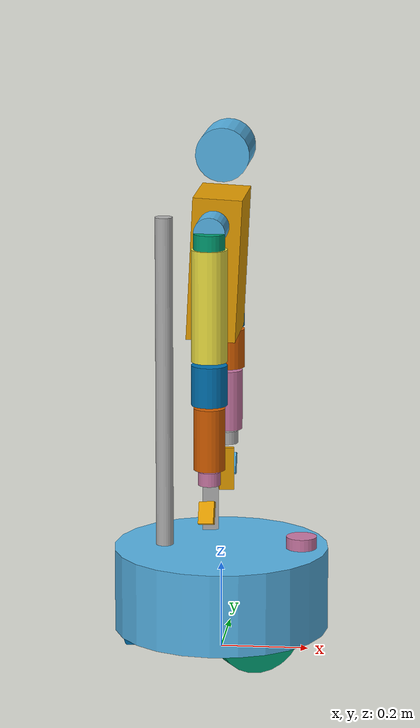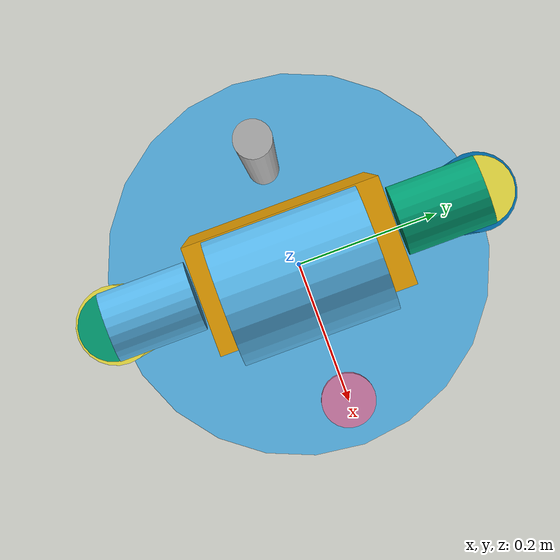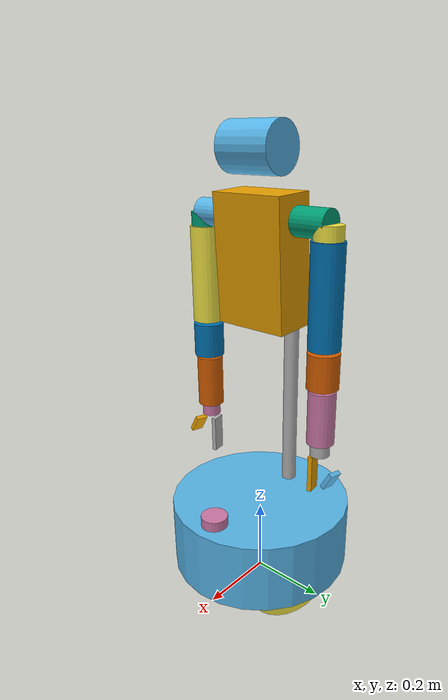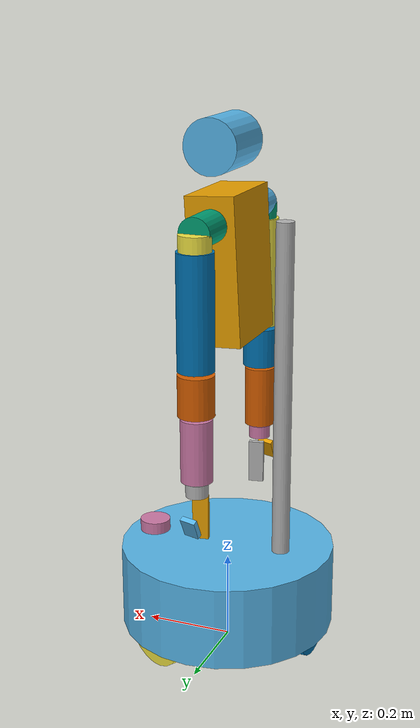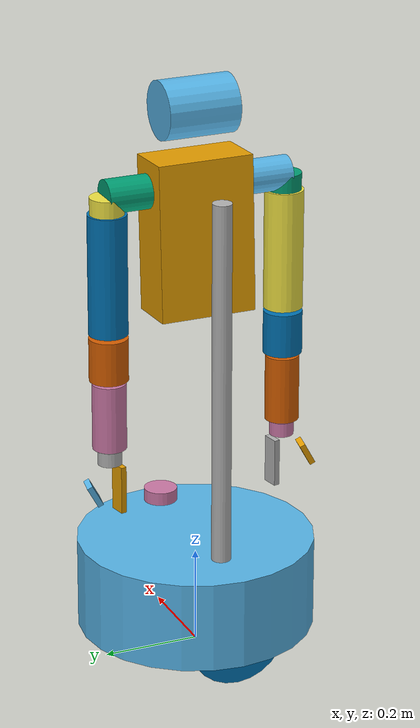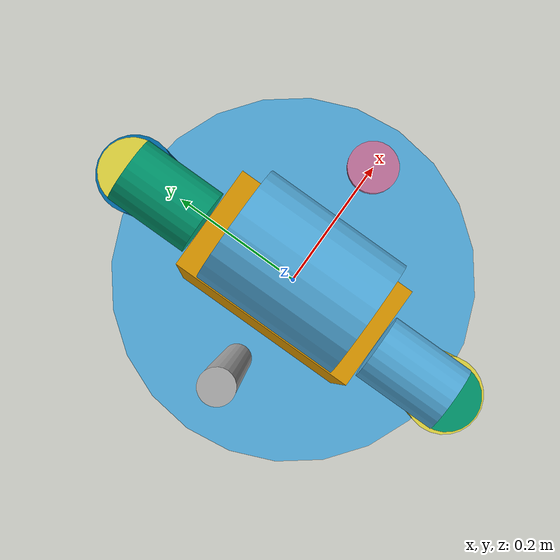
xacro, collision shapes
<?xml version="1.0"?>
<robot xmlns:xacro="http://www.ros.org/wiki/xacro" name="reachy_2023">
  <xacro:arg name="use_fake_hardware" default="true"/>
  <xacro:arg name="use_gazebo" default="false"/>
  <xacro:arg name="robot_config" default="full_kit"/>
  <xacro:arg name="orbita_hardware_zero" default="0.0, 0.0, 0.0"/>

  <xacro:include filename="/home/osamuzahid/Projects/isaac-social-nav/ros2_ws/src/Hunav_isaac_wrapper/src/config/robots/reachy/urdf/arm.urdf.xacro"/>
  <xacro:include filename="/home/osamuzahid/Projects/isaac-social-nav/ros2_ws/src/Hunav_isaac_wrapper/src/config/robots/reachy/urdf/head.urdf.xacro"/>
  <xacro:include filename="/home/osamuzahid/Projects/isaac-social-nav/ros2_ws/src/Hunav_isaac_wrapper/src/config/robots/reachy/urdf/orbita.urdf.xacro"/>
  <xacro:include filename="/home/osamuzahid/Projects/isaac-social-nav/ros2_ws/src/Hunav_isaac_wrapper/src/config/robots/reachy/urdf/zuuu.urdf.xacro"/>

  <!-- PATCH (isaac-social-nav): Zuuu mobile base (lab Reachy). Torso sits on
       the pole — not world→torso at z=1.0 (Phase 0 table-top). -->
  <xacro:zuuu/>

  <joint name="base_joint" type="fixed">
    <origin xyz="-0.006 0 1.0" rpy="0 0 0"/>
    <parent link="base_link"/>
    <child link="torso"/>
  </joint>

  <link name="bar_link">
    <visual>
      <origin xyz="0.0 0.0 0.6125" rpy="0.0 0.0 0.0"/>
      <geometry>
        <cylinder radius="0.02" length="0.775"/>
      </geometry>
    </visual>
    <collision>
      <origin xyz="0.0 0.0 0.6125" rpy="0.0 0.0 0.0"/>
      <geometry>
        <cylinder radius="0.02" length="0.775"/>
      </geometry>
    </collision>
  </link>
  <joint name="bar_joint" type="fixed">
    <origin xyz="-0.130 0 0.0" rpy="0 0 0"/>
    <parent link="base_link"/>
    <child link="bar_link"/>
  </joint>

  <link name="torso">
    <inertial>
      <origin xyz="0.0 0.019 -0.009" rpy="0.0 0.0 0.0"/>
      <mass value="0.527"/>
      <inertia ixx="2.89598e-3" ixy="-1.16791e-6" ixz="-8.28749e-6" iyy="4.491e-3" iyz="2.343e-4" izz="3.995e-3"/>
    </inertial>
    <visual name="">
      <origin xyz="0.0 0.0 0.0" rpy="0.0 0.0 0.0"/>
      <geometry>
        <mesh filename="file:///home/osamuzahid/Projects/isaac-social-nav/ros2_ws/src/Hunav_isaac_wrapper/src/config/robots/reachy/meshes/torso.obj"/>
      </geometry>
    </visual>
    <collision>
      <origin xyz="0 0 -0.1" rpy="0 0.05 0"/>
      <geometry>
        <box size="0.11 0.2 0.32"/>
      </geometry>
    </collision>
  </link>

  <xacro:property name="damping" value="0.1"/>
  <xacro:property name="friction" value="0.1"/>
  <xacro:property name="robot_config" value="$(arg robot_config)"/>

  <xacro:if value="${robot_config == 'full_kit'}">
    <xacro:property name="use_right_arm" value="true"/>
    <xacro:property name="use_left_arm" value="true"/>
    <xacro:property name="use_head" value="true"/>
    <xacro:property name="use_orbita" value="false"/>
  </xacro:if>

  <xacro:if value="${use_right_arm}">
    <xacro:arm
      prefix="r" parent="torso" side="right"
      damping="${damping}" friction="${friction}"
      serial_port="/dev/usb2ax_right_arm"
      mx_ids="10, 11, 12, 13, 14, 15, 16, 17"
      offsets="1.57, 1.57, 0.0, 0.0, 0.0, 0.0, 0.0, 0.0"
      is_direct="0.0, 0.0, 0.0, 0.0, 0.0, 0.0, 0.0, 1.0"
      reductions="1.0, 1.0, 1.0, 1.0, 1.0, 1.0, 1.0, -2.0"
      force_sensor_id="40"
      fan_id="41"
    />
  </xacro:if>

  <xacro:if value="${use_left_arm}">
    <xacro:arm
      prefix="l" parent="torso" side="left"
      damping="${damping}" friction="${friction}"
      serial_port="/dev/usb2ax_left_arm"
      mx_ids="20, 21, 22, 23, 24, 25, 26, 27"
      offsets="1.57, -1.57, 0.0, 0.0, 0.0, 0.0, 0.0, 0.0"
      is_direct="1.0, 0.0, 0.0, 0.0, 0.0, 0.0, 0.0, 1.0"
      reductions="1.0, 1.0, 1.0, 1.0, 1.0, 1.0, 1.0, -2.0"
      force_sensor_id="50"
      fan_id="51"
    />
  </xacro:if>

  <xacro:if value="${use_head}">
    <xacro:head
      parent="torso"
      damping="${damping}" friction="${friction}"
      neck_orbita_serial_port="/dev/orbita_neck"
      neck_orbita_id="70"
      neck_orbita_alpha="0.9424777960769379"
      neck_orbita_hardware_zero="$(arg orbita_hardware_zero)"
      neck_orbita_reduction="4.26666667"
      head_serial_port="/dev/usb2ax_head"
      head_xl320_ids="30, 31"
      head_xl320_offsets="0.0, 0.0"
      head_xl320_is_direct="1.0, 1.0"
      head_xl320_reductions="1.0, 1.0"
      head_fan_id="60"
    />
  </xacro:if>
</robot>

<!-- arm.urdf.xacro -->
<robot xmlns:xacro="http://www.ros.org/wiki/xacro">
    <xacro:macro name="arm"
                 params="prefix parent side damping friction serial_port mx_ids offsets is_direct reductions force_sensor_id fan_id">

        <xacro:include filename="/home/osamuzahid/Projects/isaac-social-nav/ros2_ws/src/Hunav_isaac_wrapper/src/config/robots/reachy/ros2_control/arm.ros2_control.xacro"/>

        <xacro:if value="${side == 'left'}">
            <xacro:property name="reflect" value="-1"/>
            <xacro:property name="shoulder_y" value="0.044"/>
        </xacro:if>
        <xacro:if value="${side == 'right'}">
            <xacro:property name="reflect" value="1"/>
            <xacro:property name="shoulder_y" value="0.036"/>
        </xacro:if>

        <link name="${prefix}_shoulder">
            <inertial>
                <origin xyz="-0.016 ${shoulder_y} 0.0" rpy="${1.57*reflect} 1.57 0.0"/>
                <mass value="0.053"/>
                <inertia ixx="3.308e-4" ixy="9.972e-8" ixz="-2.037e-9" iyy="4.650e-5" iyz="2.113e-6" izz="3.545e-5"/>
            </inertial>
            <visual name="">
                <origin xyz="0.0 ${0.04*reflect} 0.0" rpy="${1.57*reflect} 1.57 0.0"/>
                <geometry>
                    <mesh filename="file:///home/osamuzahid/Projects/isaac-social-nav/ros2_ws/src/Hunav_isaac_wrapper/src/config/robots/reachy/meshes/shoulder.obj"/>
                </geometry>
            </visual>
            <collision>
                <origin xyz="0.0 ${0.04*reflect} 0.0" rpy="${1.57*reflect} 1.57 0.0"/>
                <geometry>
                    <cylinder length="0.09" radius="0.035"/>
                </geometry>
            </collision>
        </link>

        <joint name="${prefix}_shoulder_pitch" type="revolute">
            <origin xyz="0.0 ${-0.19*reflect} 0.0" rpy="0.0 0.0 0.0"/>
            <parent link="${parent}"/>
            <child link="${prefix}_shoulder"/>
            <axis xyz="0 1 0"/>
            <limit lower="-2.618" upper="1.57" effort="10." velocity="0.0"/>
            <dynamics damping="${damping}" friction="${friction}"/>
        </joint>

        <link name="${prefix}_shoulder_x">
            <inertial>
                <origin xyz="-0.0 0.0 -0.019" rpy="0.0 0.0 0.0"/>
                <mass value="0.158"/>
                <inertia ixx="6.95e-5" ixy="0.0" ixz="0.0" iyy="6.95e-5" iyz="0.0" izz="9.68e-5"/>
            </inertial>
            <visual name="">
                <origin xyz="0.0 0.0 0.0" rpy="0.0 0.0 0.0"/>
                <geometry>
                    <mesh filename="file:///home/osamuzahid/Projects/isaac-social-nav/ros2_ws/src/Hunav_isaac_wrapper/src/config/robots/reachy/meshes/shoulder_x.obj"/>
                </geometry>
            </visual>
            <collision>
                <origin xyz="0 0 -0.02" rpy="0.0 0.0 0.0"/>
                <geometry>
                    <cylinder length="0.04" radius="0.035"/>
                </geometry>
            </collision>
        </link>

        <joint name="${prefix}_shoulder_roll" type="revolute">
            <origin xyz="0 0 0" rpy="0.0 0.0 0.0"/>
            <parent link="${prefix}_shoulder"/>
            <child link="${prefix}_shoulder_x"/>
            <axis xyz="1 0 0"/>
            <xacro:if value="${side == 'right'}">
                <limit lower="-3.14" upper="0.174" effort="10." velocity="0.0"/>
            </xacro:if>
            <xacro:if value="${side == 'left'}">
                <limit lower="-0.174" upper="3.14" effort="10." velocity="0.0"/>
            </xacro:if>
            <dynamics damping="${damping}" friction="${friction}"/>
        </joint>

        <link name="${prefix}_upper_arm">
            <inertial>
                <origin xyz="-0.004 0.0 -0.1426" rpy="0.0 0.0 0.0"/>
                <mass value="0.430"/>
                <inertia ixx="3.264e-3" ixy="-4.027e-8" ixz="1.395e-4" iyy="3.345e-3" iyz="1.885e-6" izz="2.616e-4"/>
            </inertial>
            <visual name="">
                <origin xyz="0.0 0.0 -0.0526" rpy="0.0 0.0 0.0"/>
                <geometry>
                    <mesh filename="file:///home/osamuzahid/Projects/isaac-social-nav/ros2_ws/src/Hunav_isaac_wrapper/src/config/robots/reachy/meshes/upper_arm.obj"/>
                </geometry>
            </visual>
            <collision>
                <origin xyz="0.0 0.0 -0.16" rpy="0.0 0.0 0.0"/>
                <geometry>
                    <cylinder length="0.25" radius="0.04"/>
                </geometry>
            </collision>
        </link>

        <joint name="${prefix}_arm_yaw" type="revolute">
            <origin xyz="0 0 0" rpy="0.0 0.0 0.0"/>
            <parent link="${prefix}_shoulder_x"/>
            <child link="${prefix}_upper_arm"/>
            <axis xyz="0 0 1"/>
            <limit lower="-1.57" upper="1.57" effort="10." velocity="0.0"/>
            <dynamics damping="${damping}" friction="${friction}"/>
        </joint>

        <link name="${prefix}_forearm">
            <inertial>
                <origin xyz="-0.008 0.0 -0.058" rpy="0.0 0.0 0.0"/>
                <mass value="0.162"/>
                <inertia ixx="2.532e-4" ixy="-2.999e-8" ixz="1.448e-5" iyy="2.538e-4" iyz="-4.323e-8" izz="1.234e-4"/>
            </inertial>
            <visual name="">
                <origin xyz="0.0 0.0 0.0" rpy="0.0 0.0 0.0"/>
                <geometry>
                    <mesh filename="file:///home/osamuzahid/Projects/isaac-social-nav/ros2_ws/src/Hunav_isaac_wrapper/src/config/robots/reachy/meshes/forearm.obj"/>
                </geometry>
            </visual>
            <collision>
                <origin xyz="0.0 0.0 -0.058" rpy="0.0 0.0 0.0"/>
                <geometry>
                    <cylinder length="0.09" radius="0.04"/>
                </geometry>
            </collision>
        </link>

        <joint name="${prefix}_elbow_pitch" type="revolute">
            <origin xyz="0 0 -0.28" rpy="0.0 0.0 0.0"/>
            <parent link="${prefix}_upper_arm"/>
            <child link="${prefix}_forearm"/>
            <axis xyz="0 1 0"/>
            <limit lower="-2.182" upper="0" effort="10." velocity="0.0"/>
            <dynamics damping="${damping}" friction="${friction}"/>
        </joint>

        <link name="${prefix}_wrist">
            <inertial>
                <origin xyz="0.0 0.0 -0.193" rpy="0.0 0.0 0.0"/>
                <mass value="0.197"/>
                <inertia ixx="6.157e-4" ixy="5.706e-8" ixz="-1.045e-5" iyy="6.280e-4" iyz="4.862e-7" izz="1.050e-4"/>
            </inertial>
            <visual name="">
                <origin xyz="0.0 0.0 -0.100" rpy="0.0 0.0 0.0"/>
                <geometry>
                    <mesh filename="file:///home/osamuzahid/Projects/isaac-social-nav/ros2_ws/src/Hunav_isaac_wrapper/src/config/robots/reachy/meshes/wrist.obj"/>
                </geometry>
            </visual>
            <collision>
                <origin xyz="0.0 0.0 -0.18" rpy="0.0 0.0 0.0"/>
                <geometry>
                    <cylinder length="0.14" radius="0.035"/>
                </geometry>
            </collision>
        </link>
        <gazebo reference="{prefix}_wrist">
            <self_collide>1</self_collide>
            <gravity>0</gravity>
            <mu1>10.0</mu1>
            <mu2>0.1</mu2>
            <kp>2e+9</kp>
            <kd>1.0</kd>
            <fdir1 value="1 0 0"/>
        </gazebo>

        <joint name="${prefix}_forearm_yaw" type="revolute">
            <origin xyz="0 0 0" rpy="0.0 0.0 0.0"/>
            <parent link="${prefix}_forearm"/>
            <child link="${prefix}_wrist"/>
            <axis xyz="0 0 1"/>
            <limit lower="-1.745" upper="1.745" effort="10." velocity="0.0"/>
            <dynamics damping="${damping}" friction="${friction}"/>
        </joint>

        <link name="${prefix}_wrist2hand">
            <inertial>
                <origin xyz="0.0 0.0 0.014" rpy="0.0 0.0 0.0"/>
                <mass value="0.01"/>
                <inertia ixx="6.750e-6" ixy="3.732e-11" ixz="-1.581e-11" iyy="6.060e-6" iyz="-1.746e-12"
                         izz="5.774e-6"/>
            </inertial>
            <visual name="">
                <origin xyz="0.0 0.0 0.0" rpy="0.0 0.0 0.0"/>
                <geometry>
                    <mesh filename="file:///home/osamuzahid/Projects/isaac-social-nav/ros2_ws/src/Hunav_isaac_wrapper/src/config/robots/reachy/meshes/wrist2hand.obj"/>
                </geometry>
            </visual>
            <collision>
                <origin xyz="0.0 0.0 -0.02" rpy="0.0 0.0 0.0"/>
                <geometry>
                    <cylinder length="0.03" radius="0.025"/>
                </geometry>
            </collision>
        </link>
        <gazebo reference="${prefix}_wrist2hand">
            <self_collide>1</self_collide>
            <gravity>0</gravity>
            <mu1>10.0</mu1>
            <mu2>0.1</mu2>
            <kp>2e+9</kp>
            <kd>1.0</kd>
            <fdir1 value="1 0 0"/>
        </gazebo>

        <joint name="${prefix}_wrist_pitch" type="revolute">
            <origin xyz="0 0 -0.25" rpy="0.0 0.0 0.0"/>
            <parent link="${prefix}_wrist"/>
            <child link="${prefix}_wrist2hand"/>
            <axis xyz="0 1 0"/>
            <limit lower="-0.785" upper="0.785" effort="10." velocity="0.0"/>
            <dynamics damping="${damping}" friction="${friction}"/>
        </joint>
        <gazebo reference="{prefix}_wrist_pitch">
            <self_collide>1</self_collide>
            <gravity>0</gravity>
            <mu1>10.0</mu1>
            <mu2>0.1</mu2>
            <kp>2e+9</kp>
            <kd>1.0</kd>
            <fdir1 value="1 0 0"/>
        </gazebo>

        <link name="${prefix}_gripper_thumb">
            <inertial>
                <origin xyz="0.0 ${0.02 *reflect} -0.06" rpy="0.0 1.57 0.0"/>
                <mass value="0.173"/>
                <inertia ixx="1.083e-4" ixy="-3.476e-5" ixz="1.331e-6" iyy="1.421e-4" iyz="6.730e-7" izz="2.112e-4"/>
            </inertial>
            <visual name="">
                <origin xyz="0.0 0.0 0.0" rpy="0.0 1.57 0.0"/>
                <geometry>
                    <mesh filename="file:///home/osamuzahid/Projects/isaac-social-nav/ros2_ws/src/Hunav_isaac_wrapper/src/config/robots/reachy/meshes/${prefix}_gripper_thumb.obj"/>
                </geometry>
            </visual>
            <collision>
                <origin xyz="0.0 ${0.02 *reflect} -0.06" rpy="-0.17 1.57 0.0"/>
                <geometry>
                    <box size="0.1 0.012 0.035"/>
                    <mesh filename="file:///home/osamuzahid/Projects/isaac-social-nav/ros2_ws/src/Hunav_isaac_wrapper/src/config/robots/reachy/meshes/${prefix}_gripper_thumb.obj"/>
                </geometry>
            </collision>

        </link>

        <gazebo reference="${prefix}_gripper_thumb">
            <self_collide>1</self_collide>
            <gravity>0</gravity>
            <mu1>10.0</mu1>
            <mu2>0.1</mu2>
            <kp>2e+9</kp>
            <kd>1.0</kd>
            <fdir1 value="1 0 0"/>
            <max_vel>0.1</max_vel>
            <min_depth>0.001</min_depth>
        </gazebo>

        <joint name="${prefix}_wrist_roll" type="revolute">
            <origin xyz="0 0 -0.0325" rpy="0.0 0.0 0.0"/>
            <parent link="${prefix}_wrist2hand"/>
            <child link="${prefix}_gripper_thumb"/>
            <axis xyz="1 0 0"/>
            <xacro:if value="${side == 'right'}">
                <limit lower="-0.95" upper="0.61" effort="10." velocity="0.0"/>
            </xacro:if>
            <xacro:if value="${side == 'left'}">
                <limit lower="-0.61" upper="0.95" effort="10." velocity="0.0"/>
            </xacro:if>
            <dynamics damping="${damping}" friction="${friction}"/>
        </joint>
        <gazebo reference="${prefix}_wrist_roll">
            <self_collide>1</self_collide>
            <gravity>0</gravity>
            <mu1>10.0</mu1>
            <mu2>0.1</mu2>
            <kp>2e+9</kp>
            <kd>1.0</kd>
            <fdir1 value="1 0 0"/>
        </gazebo>

        <link name="${prefix}_gripper_finger">
            <inertial>
                <origin xyz="0.0 ${-0.01*reflect} -0.02" rpy="0.0 1.57 0.0"/>
                <mass value="0.035"/>
                <inertia ixx="1.062e-5" ixy="-6.559e-6" ixz="-3.952e-8" iyy="9.166e-5" iyz="5.276e-9" izz="8.704e-5"/>
            </inertial>
            <visual name="">
                <origin xyz="0.0 0.0 0.0" rpy="0.0 1.57 0.0"/>
                <geometry>
                    <mesh filename="file:///home/osamuzahid/Projects/isaac-social-nav/ros2_ws/src/Hunav_isaac_wrapper/src/config/robots/reachy/meshes/${prefix}_gripper_finger.obj"/>
                </geometry>
            </visual>
            <collision>
                <origin xyz="0.0 ${-0.01*reflect} -0.02" rpy="0.17 1.57 0.0"/>
                <geometry>
                    <box size="0.05 0.012 0.035"/>
                    <mesh filename="file:///home/osamuzahid/Projects/isaac-social-nav/ros2_ws/src/Hunav_isaac_wrapper/src/config/robots/reachy/meshes/${prefix}_gripper_finger.obj"/>
                </geometry>
            </collision>
        </link>

        <gazebo reference="${prefix}_gripper_finger">
            <self_collide>1</self_collide>
            <gravity>0</gravity>
            <mu1>10.0</mu1>
            <mu2>0.1</mu2>
            <kp>2e+9</kp>
            <kd>1.0</kd>
            <fdir1 value="1 0 0"/>
        </gazebo>

        <link name="${prefix}_arm_tip">
            <inertial>
                <origin xyz="0.0 0.0 0.0" rpy="0.0 0.0 0.0"/>
                <mass value="0.001"/>
                <inertia ixx="1.0e-6" ixy="1.0e-8" ixz="1.0e-8" iyy="1.0e-6" iyz="1.0e-8" izz="1.0e-6"/>
            </inertial>
        </link>

        <joint name="${prefix}_arm_tip" type="fixed">
            <origin xyz="0 -0.012 -0.085" rpy="0 0 0"/>
            <parent link="${prefix}_gripper_thumb"/>
            <child link="${prefix}_arm_tip"/>
        </joint>

        <joint name="${prefix}_gripper" type="revolute">
            <origin xyz="0.0 ${-0.037*reflect} -0.03998" rpy="-0.5 0.0 0.0"/>
            <parent link="${prefix}_gripper_thumb"/>
            <child link="${prefix}_gripper_finger"/>
            <axis xyz="1 0 0"/>

            <xacro:if value="${side == 'right'}">
                <limit lower="-1.2" upper="0.35" effort="10." velocity="0.0"/>
            </xacro:if>
            <xacro:if value="${side == 'left'}">
                <limit lower="-0.35" upper="1.2" effort="10." velocity="0.0"/>
            </xacro:if>

            <dynamics damping="${damping}" friction="${friction}"/>
        </joint>

        <xacro:if value="$(arg use_gazebo)">
            <gazebo reference="${prefix}_gripper">
                <provideFeedback>true</provideFeedback>
            </gazebo>
            <gazebo>
                <plugin name="gazebo_ros_ft" filename="libgazebo_ros_ft_sensor.so">

                    <ros>
                        <!-- Add namespace and remap the default topic -->
                        <namespace>/${prefix}_force_sensor</namespace>
                        <argument>wrench:=${prefix}_gripper_ft_sensor</argument>
                    </ros>

                    <joint_name>${prefix}_gripper</joint_name>
                    <update_rate>200</update_rate>
                    <update_rate>1</update_rate>
                    <gaussian_noise>0.01</gaussian_noise>
                </plugin>
            </gazebo>
        </xacro:if>

        <!-- Doesn't work... -->

        <xacro:arm_control
                name="${prefix}"
                serial_port="${serial_port}"
                mx_ids="${mx_ids}"
                offsets="${offsets}"
                is_direct="${is_direct}"
                reductions="${reductions}"
                force_sensor_id="${force_sensor_id}"
                fan_id="${fan_id}"
        />

    </xacro:macro>
</robot>

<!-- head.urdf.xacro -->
<robot xmlns:xacro="http://www.ros.org/wiki/xacro">

  <xacro:arg name="depth_camera" default="false"/>
  <xacro:property name="camera_link" value="0.05" /> <!-- Size of square 'camera' box -->
  <xacro:property name="camera_convergence" value="0.0" /> <!-- convergence angle (rad) of the cameras. 0=parallel-->

  <xacro:macro name="head" params="parent damping friction neck_orbita_serial_port neck_orbita_id neck_orbita_alpha neck_orbita_hardware_zero neck_orbita_reduction head_serial_port head_xl320_ids head_xl320_offsets head_xl320_is_direct head_xl320_reductions head_fan_id">

    <xacro:include filename="/home/osamuzahid/Projects/isaac-social-nav/ros2_ws/src/Hunav_isaac_wrapper/src/config/robots/reachy/ros2_control/head.ros2_control.xacro"/>

    <joint name="neck_roll" type="revolute">
      <origin xyz="0.015 0.0 0.095" rpy="-0.15105105 0.08669986 -1.05356462"/>
      <parent link="${parent}"/>
      <child link="head_x"/>
      <axis xyz="1 0 0"/>
      <limit lower="-0.8" upper="0.8" effort="10." velocity="0.0"/>
      <dynamics damping="${damping}" friction="${friction}"/>
    </joint>

    <link name="head_x">
      <inertial>
        <origin xyz="0.0 0.0 0.0" rpy="0.0 0.0 0.0"/>
        <mass value="0.001"/>
        <inertia ixx="1.0e-6" ixy="1.0e-8" ixz="1.0e-8" iyy="1.0e-6" iyz="1.0e-8" izz="1.0e-6"/>
      </inertial>
    </link>

    <joint name="neck_pitch" type="revolute">
      <origin xyz="0 0 0" rpy="0.0 0.0 0.0"/>
      <parent link="head_x"/>
      <child link="head_y"/>
      <axis xyz="0 1 0"/>
      <limit lower="-0.8" upper="1.13" effort="10." velocity="0.0"/>
      <dynamics damping="${damping}" friction="${friction}"/>
    </joint>

    <link name="head_y" >
      <inertial>
        <origin xyz="0.0 0.0 0.0" rpy="0.0 0.0 0.0"/>
        <mass value="0.001"/>
        <inertia ixx="1.0e-6" ixy="1.0e-8" ixz="1.0e-8" iyy="1.0e-6" iyz="1.0e-8" izz="1.0e-6"/>
      </inertial>
    </link>

    <joint name="neck_yaw" type="revolute">
      <origin xyz="0 0 0" rpy="0.0 0.0 0.0"/>
      <parent link="head_y"/>
      <child link="head_z"/>
      <axis xyz="0 0 1"/>
      <limit lower="-2.79" upper="2.79" effort="10." velocity="0.0"/>
      <dynamics damping="${damping}" friction="${friction}"/>
    </joint>

    <link name="head_z">
      <inertial>
        <origin xyz="0.0 0.0 0.0" rpy="0.0 0.0 0.0"/>
        <mass value="0.001"/>
        <inertia ixx="1.0e-6" ixy="1.0e-8" ixz="1.0e-8" iyy="1.0e-6" iyz="1.0e-8" izz="1.0e-6"/>
      </inertial>
    </link>

    <joint name="neck_fixed" type="fixed">
      <origin xyz="0 0 0" rpy="0.0 0.0 1.047"/>
      <parent link="head_z" />
      <child link="head" />
    </joint>

    <!-- Fixed Orbita Arms Visuals -->

    <joint name="neck_top" type="fixed">
      <origin xyz="0.0067 0.0 0.0478" rpy="0 0.174 0"/>
      <parent link="${parent}"/>
      <child link="top_neck_arm"/>
    </joint>

    <link name="top_neck_arm">
      <inertial>
        <origin xyz="0.0 0.0 0.0" rpy="0.0 0.0 0.0"/>
        <mass value="0.001"/>
        <inertia ixx="1.0e-6" ixy="1.0e-8" ixz="1.0e-8" iyy="1.0e-6" iyz="1.0e-8" izz="1.0e-6"/>
      </inertial>

      <visual name="">
        <origin xyz="0.0 0.0 0.0" rpy="0.0 0.0 0.5236"/>
        <geometry>
          <mesh filename="file:///home/osamuzahid/Projects/isaac-social-nav/ros2_ws/src/Hunav_isaac_wrapper/src/config/robots/reachy/meshes/orbita_arm.obj"/>
        </geometry>
      </visual>
      <collision>
        <origin xyz="0.0 0.0 0.0" rpy="0.0 0.0 0.0"/>
        <geometry>
          <cylinder length="0.0" radius="0.0" />
        </geometry>
      </collision>
    </link>

    <joint name="neck_middle" type="fixed">
      <origin xyz="0.0067 0.0 0.0478" rpy="0 0.174 0"/>
      <parent link="${parent}"/>
      <child link="middle_neck_arm"/>
    </joint>

    <link name="middle_neck_arm">
      <inertial>
        <origin xyz="0.0 0.0 0.0" rpy="0.0 0.0 0.0"/>
        <mass value="0.001"/>
        <inertia ixx="1.0e-6" ixy="1.0e-8" ixz="1.0e-8" iyy="1.0e-6" iyz="1.0e-8" izz="1.0e-6"/>
      </inertial>
      <visual name="">
        <origin xyz="0.0 0.0 0.0" rpy="0.0 0.0 2.618"/>
        <geometry>
          <mesh filename="file:///home/osamuzahid/Projects/isaac-social-nav/ros2_ws/src/Hunav_isaac_wrapper/src/config/robots/reachy/meshes/orbita_arm.obj"/>
        </geometry>
      </visual>
      <collision>
        <origin xyz="0.0 0.0 0.0" rpy="0.0 0.0 0.0"/>
        <geometry>
          <cylinder length="0.0" radius="0.0" />
        </geometry>
      </collision>
    </link>

    <joint name="neck_bottom" type="fixed">
      <origin xyz="0.0067 0.0 0.0478" rpy="0 0.174 0"/>
      <parent link="${parent}"/>
      <child link="bottom_neck_arm"/>
    </joint>

    <link name="bottom_neck_arm">
      <inertial>
        <origin xyz="0.0 0.0 0.0" rpy="0.0 0.0 0.0"/>
        <mass value="0.001"/>
        <inertia ixx="1.0e-6" ixy="1.0e-8" ixz="1.0e-8" iyy="1.0e-6" iyz="1.0e-8" izz="1.0e-6"/>
      </inertial>
      <visual name="">
        <origin xyz="0.0 0.0 0.0" rpy="0.0 0.0 -1.57"/>
        <geometry>
          <mesh filename="file:///home/osamuzahid/Projects/isaac-social-nav/ros2_ws/src/Hunav_isaac_wrapper/src/config/robots/reachy/meshes/orbita_arm.obj"/>
        </geometry>
      </visual>
      <collision>
        <origin xyz="0.0 0.0 0.0" rpy="0.0 0.0 0.0"/>
        <geometry>
          <cylinder length="0.0" radius="0.0" />
        </geometry>
      </collision>
    </link>

    <!-- Head Links -->

    <link name="head">
      <inertial>
        <origin xyz="-0.009 -0.002 0.059" rpy="0.0 0.0 0.0"/>
        <mass value="0.237"/>
        <inertia ixx="1.676e-3" ixy="3.068e-6" ixz="1.2449e-4" iyy="1.368e-3" iyz="3.360e-5" izz="8.425e-4"/>
      </inertial>
      <visual name="">
        <origin xyz="0.0 0.0 0.0" rpy="0.0 0.0 0.0"/>
        <geometry>
          <mesh filename="file:///home/osamuzahid/Projects/isaac-social-nav/ros2_ws/src/Hunav_isaac_wrapper/src/config/robots/reachy/meshes/head.obj"/>
        </geometry>
      </visual>
      <collision>
        <origin xyz="-0.009 -0.002 0.059" rpy="1.57 0.0 0.0"/>
        <geometry>
          <cylinder length="0.15" radius="0.06" />
        </geometry>
      </collision>
    </link>

    <link name="head_tip" >
    </link>

    <joint name="head_tip_fixed" type="fixed">
      <!-- between the cameras -->
      <origin xyz="0.02 0 0.06105" rpy="0.0 0.0 0"/>

      <!-- Rotation center -->
      <parent link="head" />
      <child link="head_tip" />
    </joint>

    <link name="l_antenna_link">
      <inertial>
        <origin xyz="-0.001 0.0 0.008" rpy="0.0 0.0 0.0"/>
        <mass value="0.004"/>
        <!-- PATCH: upstream PoI dominates diagonal → negative principal inertia in USD. -->
        <inertia ixx="1.0e-6" ixy="0.0" ixz="0.0" iyy="1.0e-6" iyz="0.0" izz="1.0e-6"/>
      </inertial>
      <visual name="">
        <origin xyz="0.0 0.0 0.0" rpy="0.0 0.0 0.0"/>
        <geometry>
          <mesh filename="file:///home/osamuzahid/Projects/isaac-social-nav/ros2_ws/src/Hunav_isaac_wrapper/src/config/robots/reachy/meshes/antenna.obj"/>
        </geometry>
      </visual>
      <collision>
        <origin xyz="0.1 0.0 0.1" rpy="0.0 0 0.0"/>
        <geometry>
          <cylinder length="0.0" radius="0.0" />
        </geometry>
      </collision>
    </link>

    <joint name="l_antenna" type="revolute">
      <origin xyz="-0.052 0.057 0.086" rpy="0.166 -1.054 -1.11"/>
      <parent link="head"/>
      <child link="l_antenna_link"/>
      <axis xyz="0 0 1"/>
      <limit lower="-2.618" upper="2.618" effort="10." velocity="0.0"/>
    </joint>

    <link name="r_antenna_link">
      <inertial>
        <origin xyz="-0.001 0.0 0.008" rpy="0.0 0.0 0.0"/>
        <mass value="0.004"/>
        <!-- PATCH: upstream PoI dominates diagonal → negative principal inertia in USD. -->
        <inertia ixx="1.0e-6" ixy="0.0" ixz="0.0" iyy="1.0e-6" iyz="0.0" izz="1.0e-6"/>
      </inertial>
      <visual name="">
        <origin xyz="0.0 0.0 0.0" rpy="0.0 0.0 0.0"/>
        <geometry>
          <mesh filename="file:///home/osamuzahid/Projects/isaac-social-nav/ros2_ws/src/Hunav_isaac_wrapper/src/config/robots/reachy/meshes/antenna.obj"/>
        </geometry>
      </visual>
      <collision>
        <origin xyz="0.0 0.0 0.0" rpy="0.0 0.0 0.0"/>
        <geometry>
          <cylinder length="0.0" radius="0.0" />
        </geometry>
      </collision>
    </link>

    <joint name="r_antenna" type="revolute">
      <origin xyz="-0.052 -0.057 0.086" rpy="-0.166 -1.054 1.11"/>
      <parent link="head"/>
      <child link="r_antenna_link"/>
      <axis xyz="0 0 1"/>
      <limit lower="-2.618" upper="2.618" effort="10." velocity="0.0"/>
    </joint>

    <xacro:head_control
      neck_orbita_serial_port="${neck_orbita_serial_port}"
      neck_orbita_id="${neck_orbita_id}"
      neck_orbita_alpha="${neck_orbita_alpha}"
      neck_orbita_hardware_zero="${neck_orbita_hardware_zero}"
      neck_orbita_reduction="${neck_orbita_reduction}"

      head_serial_port="${head_serial_port}"
      head_xl320_ids="${head_xl320_ids}"
      head_xl320_offsets="${head_xl320_offsets}"
      head_xl320_is_direct="${head_xl320_is_direct}"
      head_xl320_reductions="${head_xl320_reductions}"
      head_fan_id="${head_fan_id}"
    />

    <!-- Cameras -->
    <xacro:if value="$(arg use_gazebo)">
      <joint name="left_cam_fixed" type="fixed">
	<origin xyz="0.02 0.03625 0.06105" rpy="0.0 0.0  ${-camera_convergence/2.0}"/>
	<parent link="head" />
	<child link="left_camera" />
      </joint>

      <link name="left_camera" >

	<inertial>
	  <mass value="1e-5" />
	  <origin xyz="0 0 0" rpy="0 0 0"/>
	  <inertia ixx="1e-6" ixy="0" ixz="0" iyy="1e-6" iyz="0" izz="1e-6" />
	</inertial>
      </link>

      <link name="left_camera_optical">
      </link>

      <joint name="left_camera_optical_joint" type="fixed">
	<!-- these values have to be these values otherwise the gazebo camera
             image won't be aligned properly with the frame it is supposedly
             originating from -->
	<origin xyz="0 0 0" rpy="${-pi/2.0} 0 ${-pi/2.0}"/>
	<parent link="left_camera"/>
	<child link="left_camera_optical"/>
      </joint>

      <joint name="right_cam_fixed" type="fixed">
	<origin xyz="0.02 -0.03625 0.06105" rpy="0.0 0.0 ${camera_convergence/2.0}"/>
	<parent link="head" />
	<child link="right_camera" />
      </joint>

      <link name="right_camera" >

	<inertial>
	  <mass value="1e-5" />
	  <origin xyz="0 0 0" rpy="0 0 0"/>
	  <inertia ixx="1e-6" ixy="0" ixz="0" iyy="1e-6" iyz="0" izz="1e-6" />
	</inertial>
      </link>

      <link name="right_camera_optical">
      </link>

      <joint name="right_camera_optical_joint" type="fixed">
	<!-- these values have to be these values otherwise the gazebo camera
             image won't be aligned properly with the frame it is supposedly
             originating from -->
	<origin xyz="0 0 0" rpy="${-pi/2.0} 0 ${-pi/2.0}"/>
	<parent link="right_camera"/>
	<child link="right_camera_optical"/>
      </joint>

      <gazebo reference="left_camera">
	<sensor type="camera" name="left_camera">

          <!-- Set always_on only sensor, not on plugin -->
          <always_on>0</always_on>

          <!-- Set update_rate only sensor, not on plugin -->
          <update_rate>30</update_rate>

          <camera name="left_camera">
            <horizontal_fov>1.3962634</horizontal_fov>
            <image>
              <width>800</width>
              <height>800</height>
              <format>R8G8B8</format>
            </image>
            <distortion>
              <k1>0.0</k1>
              <k2>0.0</k2>
              <k3>0.0</k3>
              <p1>0.0</p1>
              <p2>0.0</p2>
              <center>0.5 0.5</center>
            </distortion>

            <noise>
              <type>gaussian</type>
              <mean>0.0</mean>
              <stddev>0.007</stddev>
            </noise>

          </camera>

          <!-- Use camera, not camera_triggered -->
          <plugin name="left_camera_controller" filename="libgazebo_ros_camera.so">
              <ros>
                <namespace>/</namespace>
                <remapping>image_raw:=image_raw</remapping>
                <remapping>camera_info:=camera_info</remapping>
              </ros>
              <camera_name>left_image</camera_name>

            <!-- Set camera name. If empty, defaults to sensor name (i.e. "sensor_name") -->

            <!-- Set TF frame name. If empty, defaults to link name (i.e. "link_name") -->
            <frame_name>left_camera_optical</frame_name>

            <hack_baseline>0.07</hack_baseline>

            <!-- No need to repeat distortion parameters or to set autoDistortion -->
          </plugin>
        </sensor>
      </gazebo>

      <gazebo reference="right_camera">
	<sensor type="camera" name="right_camera">

          <!-- Set always_on only sensor, not on plugin -->
          <always_on>0</always_on>

          <!-- Set update_rate only sensor, not on plugin -->
          <update_rate>30</update_rate>

          <camera name="right_camera">
            <horizontal_fov>1.3962634</horizontal_fov>
            <image>
              <width>800</width>
              <height>800</height>
              <format>R8G8B8</format>
            </image>
            <distortion>
              <k1>0.0</k1>
              <k2>0.0</k2>
              <k3>0.0</k3>
              <p1>0.0</p1>
              <p2>0.0</p2>
              <center>0.5 0.5</center>
            </distortion>

            <noise>
              <type>gaussian</type>
              <mean>0.0</mean>
              <stddev>0.007</stddev>
            </noise>

          </camera>

          <!-- Use camera, not camera_triggered -->
          <plugin name="right_camera_controller" filename="libgazebo_ros_camera.so">
              <ros>
                <namespace>/</namespace>
                <remapping>image_raw:=image_raw</remapping>
                <remapping>camera_info:=camera_info</remapping>
              </ros>
              <camera_name>right_image</camera_name>

            <!-- Set camera name. If empty, defaults to sensor name (i.e. "sensor_name") -->

            <!-- Set TF frame name. If empty, defaults to link name (i.e. "link_name") -->
            <frame_name>right_camera_optical</frame_name>

            <hack_baseline>0.07</hack_baseline>

            <!-- No need to repeat distortion parameters or to set autoDistortion -->
          </plugin>
        </sensor>
      </gazebo>

      <link name="depth_camera_link" >

	<inertial>
	  <mass value="1e-5" />
	  <origin xyz="0 0 0" rpy="0 0 0"/>
	  <inertia ixx="1e-6" ixy="0" ixz="0" iyy="1e-6" iyz="0" izz="1e-6" />
	</inertial>

      </link>

      <joint name="depth_cam_fixed" type="fixed">
	<origin xyz="0.02 0 0.06105" rpy="0.0 0.0 0"/>
	<parent link="head" />
	<child link="depth_camera_link" />
      </joint>

      <link name="depth_camera_optical">
      </link>

      <joint name="depth_camera_optical_joint" type="fixed">
	<!-- these values have to be these values otherwise the gazebo camera
             image won't be aligned properly with the frame it is supposedly
             originating from -->
	<origin xyz="0 0 0" rpy="${-pi/2.0} 0 ${-pi/2.0}"/>
	<parent link="depth_camera_link"/>
	<child link="depth_camera_optical"/>
      </joint>

      <xacro:if value="$(arg depth_camera)">
	<gazebo reference="depth_camera_link">
	  <sensor name="depth_camera" type="depth">
            <always_on>true</always_on>
            <update_rate>15</update_rate>
            <pose>0 0 0 0 0 0</pose>
            <camera name="realsense_depth_camera">
              <horizontal_fov>1.46608</horizontal_fov>
              <image>
                <width>800</width>
                <height>800</height>
                <format>B8G8R8</format>
              </image>
              <clip>
                <near>0.05</near>
                <far>8</far>
              </clip>
            </camera>
            <!-- https://github.com/mlherd/ros2_turtlebot3_waffle_intel_realsense -->
            <plugin name="intel_realsense_r200_depth_driver" filename="libgazebo_ros_camera.so">
              <ros>
                <namespace>depth_camera</namespace>
                <remapping>depth_camera/image_raw:=color/image_raw</remapping>
                <remapping>depth_camera/depth/image_raw:=depth/image_rect_raw</remapping>
                <remapping>depth_camera/camera_info:=camera_info</remapping>
                <remapping>depth_camera/depth/camera_info:=depth/camera_info</remapping>
                <remapping>depth_camera/points:=depth/points</remapping>
              </ros>
              <camera_name>depth_camera</camera_name>
              <frame_name>depth_camera_optical</frame_name>
              <hack_baseline>0.07</hack_baseline>
              <min_depth>0.05</min_depth>
              <max_depth>8.0</max_depth>
            </plugin>
	  </sensor>
	</gazebo>
      </xacro:if>
</xacro:if>

</xacro:macro>
</robot>

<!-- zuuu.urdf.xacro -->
<robot xmlns:xacro="http://www.ros.org/wiki/xacro" name="zuuu">
  <xacro:macro name="zuuu">
    <xacro:property name="base_radius" value="0.16"/>
    <xacro:property name="wheel_radius" value="0.105"/>
    <xacro:property name="wheel_width" value="0.035"/>
    <xacro:property name="wheel_radial_dist" value="0.1805"/>
    <xacro:property name="mesh_dir" value="file:///home/osamuzahid/Projects/isaac-social-nav/ros2_ws/src/Hunav_isaac_wrapper/src/config/robots/reachy/meshes"/>

    <xacro:macro name="cylinder_inertia" params="m r h">
      <inertial>
        <origin xyz="0 0 0" rpy="${pi/2} 0 0"/>
        <mass value="${m}"/>
        <inertia
          ixx="${(m/12) * (3*r*r + h*h)}" ixy="0" ixz="0"
          iyy="${(m/12) * (3*r*r + h*h)}" iyz="0"
          izz="${(m/2) * (r*r)}"/>
      </inertial>
    </xacro:macro>

    <link name="base_footprint"/>

    <joint name="base_footprint_joint" type="fixed">
      <origin xyz="0 0 0" rpy="0 0 0"/>
      <parent link="base_footprint"/>
      <child link="base_link"/>
    </joint>

    <link name="base_link">
      <visual>
        <origin xyz="0 0 0" rpy="0 0 0"/>
        <geometry>
          <mesh filename="${mesh_dir}/mobile_base_visual.obj"/>
        </geometry>
      </visual>
      <collision>
        <origin xyz="0 0 0.145" rpy="0 0 0"/>
        <geometry>
          <cylinder radius="0.245" length="0.19"/>
        </geometry>
      </collision>
      <inertial>
        <origin xyz="0.008 -0.00048 0.112" rpy="0 0 0"/>
        <mass value="24.0"/>
        <inertia
          ixx="0.40791094" ixy="-0.00167148" ixz="-0.00178789"
          iyy="0.4236827" iyz="0.00026596" izz="0.70990763"/>
      </inertial>
    </link>

    <xacro:macro name="wheel" params="prefix yaw_angle">
      <link name="${prefix}_link">
        <visual>
          <origin xyz="0 0 0" rpy="${pi/2} 0 0"/>
          <geometry>
            <cylinder radius="${wheel_radius}" length="${wheel_width}"/>
          </geometry>
        </visual>
        <collision>
          <origin xyz="0 0 0" rpy="${pi/2} 0 0"/>
          <geometry>
            <cylinder radius="${wheel_radius}" length="${wheel_width}"/>
          </geometry>
        </collision>
        <xacro:cylinder_inertia m="0.5" r="${wheel_radius}" h="${wheel_width}"/>
      </link>
      <joint name="${prefix}_joint" type="fixed">
        <parent link="base_link"/>
        <child link="${prefix}_link"/>
        <origin
          xyz="${(wheel_radial_dist+wheel_width/2)*cos(yaw_angle)} ${-(wheel_radial_dist+wheel_width/2)*sin(yaw_angle)} ${wheel_radius}"
          rpy="0 0 ${pi/2-yaw_angle}"/>
        <axis xyz="0 1 0"/>
      </joint>
    </xacro:macro>

    <xacro:wheel prefix="drivewhl1" yaw_angle="${pi/3}"/>
    <xacro:wheel prefix="drivewhl2" yaw_angle="${5*pi/3}"/>
    <xacro:wheel prefix="drivewhl3" yaw_angle="${pi}"/>

    <link name="imu_link"/>
    <joint name="imu_joint" type="fixed">
      <parent link="base_link"/>
      <child link="imu_link"/>
      <origin xyz="0 0 0.01"/>
    </joint>

    <link name="lidar_link">
      <inertial>
        <origin xyz="0 0 0" rpy="0 0 0"/>
        <mass value="0.125"/>
        <inertia ixx="0.001" ixy="0" ixz="0" iyy="0.001" iyz="0" izz="0.001"/>
      </inertial>
      <collision>
        <origin xyz="0 0 0" rpy="0 0 0"/>
        <geometry>
          <cylinder radius="0.035" length="0.035"/>
        </geometry>
      </collision>
    </link>
    <joint name="lidar_joint" type="fixed">
      <parent link="base_link"/>
      <child link="lidar_link"/>
      <origin xyz="0.184 0 0.25" rpy="0 0 0"/>
    </joint>
  </xacro:macro>
</robot>
